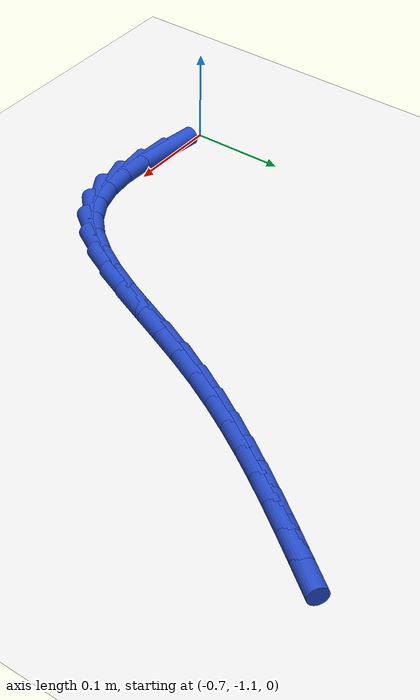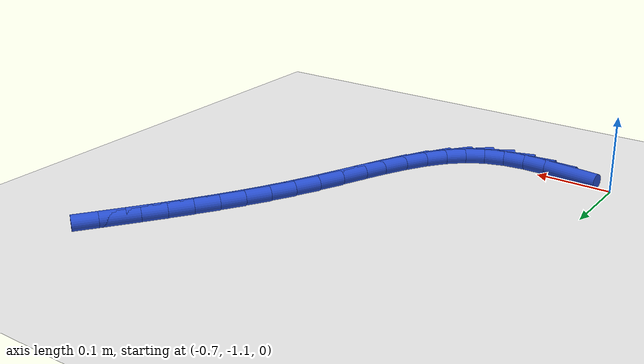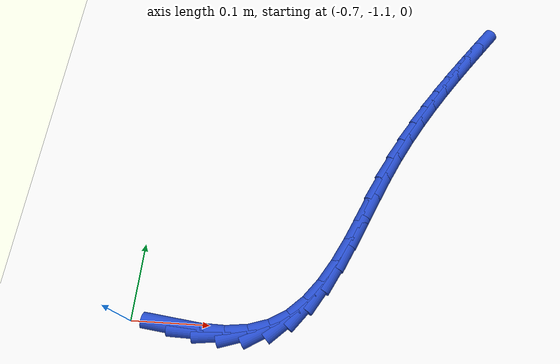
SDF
<sdf version="1.6">
 <world name="default">
  <model name="ground_plane">
   <static>1</static>
   <link name="link">
    <collision name="collision">
     <geometry><plane><normal>0 0 1</normal><size>100 100</size></plane></geometry>
     <surface><friction><ode><mu>100</mu><mu2>50</mu2></ode></friction></surface>
    </collision>
    <visual name="visual">
     <cast_shadows>0</cast_shadows>
     <geometry><plane><normal>0 0 1</normal><size>100 100</size></plane></geometry>
     <material>
      <script><uri>file://media/materials/scripts/gazebo.material</uri><name>Gazebo/WhiteGlow</name></script>
     </material>
    </visual>
   </link>
  </model>
  <model name="line">
   <link name="link_207">
    <pose>-0.6419646865504964 -1.1043243968053154 0.01 0 1.57 -0.1273228503780875</pose>
    <collision name="collision">
     <geometry><cylinder><radius>0.01</radius><length>0.08</length></cylinder></geometry>
    </collision>
    <visual name="visual">
     <material>
      <script><name>Gazebo/Blue</name><uri>file://media/materials/scripts/gazebo.material</uri></script>
     </material>
     <geometry><cylinder><radius>0.01</radius><length>0.08</length></cylinder></geometry>
    </visual>
   </link>
   <link name="link_208">
    <pose>-0.609027874496208 -1.108540814528411 0.01 0 1.57 -0.0294314310449744</pose>
    <collision name="collision">
     <geometry><cylinder><radius>0.01</radius><length>0.08</length></cylinder></geometry>
    </collision>
    <visual name="visual">
     <material>
      <script><name>Gazebo/Blue</name><uri>file://media/materials/scripts/gazebo.material</uri></script>
     </material>
     <geometry><cylinder><radius>0.01</radius><length>0.08</length></cylinder></geometry>
    </visual>
   </link>
   <link name="link_209">
    <pose>-0.5779092266197554 -1.1094569454031866 0.01 0 1.57 0.10914798589939939</pose>
    <collision name="collision">
     <geometry><cylinder><radius>0.01</radius><length>0.08</length></cylinder></geometry>
    </collision>
    <visual name="visual">
     <material>
      <script><name>Gazebo/Blue</name><uri>file://media/materials/scripts/gazebo.material</uri></script>
     </material>
     <geometry><cylinder><radius>0.01</radius><length>0.08</length></cylinder></geometry>
    </visual>
   </link>
   <link name="link_210">
    <pose>-0.5490020219410112 -1.1062891927880636 0.01 0 1.57 0.2964888888452524</pose>
    <collision name="collision">
     <geometry><cylinder><radius>0.01</radius><length>0.08</length></cylinder></geometry>
    </collision>
    <visual name="visual">
     <material>
      <script><name>Gazebo/Blue</name><uri>file://media/materials/scripts/gazebo.material</uri></script>
     </material>
     <geometry><cylinder><radius>0.01</radius><length>0.08</length></cylinder></geometry>
    </visual>
   </link>
   <link name="link_211">
    <pose>-0.522699539479851 -1.0982539600414651 0.01 0 1.57 0.5288798632764764</pose>
    <collision name="collision">
     <geometry><cylinder><radius>0.01</radius><length>0.08</length></cylinder></geometry>
    </collision>
    <visual name="visual">
     <material>
      <script><name>Gazebo/Blue</name><uri>file://media/materials/scripts/gazebo.material</uri></script>
     </material>
     <geometry><cylinder><radius>0.01</radius><length>0.08</length></cylinder></geometry>
    </visual>
   </link>
   <link name="link_212">
    <pose>-0.4993678918183211 -1.084618634356574 0.01 0 1.57 0.7502643885886007</pose>
    <collision name="collision">
     <geometry><cylinder><radius>0.01</radius><length>0.08</length></cylinder></geometry>
    </collision>
    <visual name="visual">
     <material>
      <script><name>Gazebo/Blue</name><uri>file://media/materials/scripts/gazebo.material</uri></script>
     </material>
     <geometry><cylinder><radius>0.01</radius><length>0.08</length></cylinder></geometry>
    </visual>
   </link>
   <link name="link_213">
    <pose>-0.47889926774925434 -1.0655400258354992 0.01 0 1.57 0.916295596899027</pose>
    <collision name="collision">
     <geometry><cylinder><radius>0.01</radius><length>0.08</length></cylinder></geometry>
    </collision>
    <visual name="visual">
     <material>
      <script><name>Gazebo/Blue</name><uri>file://media/materials/scripts/gazebo.material</uri></script>
     </material>
     <geometry><cylinder><radius>0.01</radius><length>0.08</length></cylinder></geometry>
    </visual>
   </link>
   <link name="link_214">
    <pose>-0.4607831373076315 -1.0419307354843772 0.01 0 1.57 1.0313241511752642</pose>
    <collision name="collision">
     <geometry><cylinder><radius>0.01</radius><length>0.08</length></cylinder></geometry>
    </collision>
    <visual name="visual">
     <material>
      <script><name>Gazebo/Blue</name><uri>file://media/materials/scripts/gazebo.material</uri></script>
     </material>
     <geometry><cylinder><radius>0.01</radius><length>0.08</length></cylinder></geometry>
    </visual>
   </link>
   <link name="link_215">
    <pose>-0.44449616353264026 -1.0147273994721941 0.01 0 1.57 1.105789159890827</pose>
    <collision name="collision">
     <geometry><cylinder><radius>0.01</radius><length>0.08</length></cylinder></geometry>
    </collision>
    <visual name="visual">
     <material>
      <script><name>Gazebo/Blue</name><uri>file://media/materials/scripts/gazebo.material</uri></script>
     </material>
     <geometry><cylinder><radius>0.01</radius><length>0.08</length></cylinder></geometry>
    </visual>
   </link>
   <link name="link_216">
    <pose>-0.42951500946346854 -0.9848666539679368 0.01 0 1.57 1.1482850878371735</pose>
    <collision name="collision">
     <geometry><cylinder><radius>0.01</radius><length>0.08</length></cylinder></geometry>
    </collision>
    <visual name="visual">
     <material>
      <script><name>Gazebo/Blue</name><uri>file://media/materials/scripts/gazebo.material</uri></script>
     </material>
     <geometry><cylinder><radius>0.01</radius><length>0.08</length></cylinder></geometry>
    </visual>
   </link>
   <link name="link_217">
    <pose>-0.41531633813930396 -0.9532851351405912 0.01 0 1.57 1.1641170988290683</pose>
    <collision name="collision">
     <geometry><cylinder><radius>0.01</radius><length>0.08</length></cylinder></geometry>
    </collision>
    <visual name="visual">
     <material>
      <script><name>Gazebo/Blue</name><uri>file://media/materials/scripts/gazebo.material</uri></script>
     </material>
     <geometry><cylinder><radius>0.01</radius><length>0.08</length></cylinder></geometry>
    </visual>
   </link>
   <link name="link_218">
    <pose>-0.4013768125993345 -0.9209194791591441 0.01 0 1.57 1.1555113587994952</pose>
    <collision name="collision">
     <geometry><cylinder><radius>0.01</radius><length>0.08</length></cylinder></geometry>
    </collision>
    <visual name="visual">
     <material>
      <script><name>Gazebo/Blue</name><uri>file://media/materials/scripts/gazebo.material</uri></script>
     </material>
     <geometry><cylinder><radius>0.01</radius><length>0.08</length></cylinder></geometry>
    </visual>
   </link>
   <link name="link_219">
    <pose>-0.38717309588274795 -0.8887063221925819 0.01 0 1.57 1.123592244398268</pose>
    <collision name="collision">
     <geometry><cylinder><radius>0.01</radius><length>0.08</length></cylinder></geometry>
    </collision>
    <visual name="visual">
     <material>
      <script><name>Gazebo/Blue</name><uri>file://media/materials/scripts/gazebo.material</uri></script>
     </material>
     <geometry><cylinder><radius>0.01</radius><length>0.08</length></cylinder></geometry>
    </visual>
   </link>
   <link name="link_220">
    <pose>-0.3722171746990968 -0.8575229064767532 0.01 0 1.57 1.084334476768937</pose>
    <collision name="collision">
     <geometry><cylinder><radius>0.01</radius><length>0.08</length></cylinder></geometry>
    </collision>
    <visual name="visual">
     <material>
      <script><name>Gazebo/Blue</name><uri>file://media/materials/scripts/gazebo.material</uri></script>
     </material>
     <geometry><cylinder><radius>0.01</radius><length>0.08</length></cylinder></geometry>
    </visual>
   </link>
   <link name="link_221">
    <pose>-0.3563985675117339 -0.8276116847278782 0.01 0 1.57 1.0485992326474876</pose>
    <collision name="collision">
     <geometry><cylinder><radius>0.01</radius><length>0.08</length></cylinder></geometry>
    </collision>
    <visual name="visual">
     <material>
      <script><name>Gazebo/Blue</name><uri>file://media/materials/scripts/gazebo.material</uri></script>
     </material>
     <geometry><cylinder><radius>0.01</radius><length>0.08</length></cylinder></geometry>
    </visual>
   </link>
   <link name="link_222">
    <pose>-0.339835510851496 -0.7988305384817982 0.01 0 1.57 1.0170758292904825</pose>
    <collision name="collision">
     <geometry><cylinder><radius>0.01</radius><length>0.08</length></cylinder></geometry>
    </collision>
    <visual name="visual">
     <material>
      <script><name>Gazebo/Blue</name><uri>file://media/materials/scripts/gazebo.material</uri></script>
     </material>
     <geometry><cylinder><radius>0.01</radius><length>0.08</length></cylinder></geometry>
    </visual>
   </link>
   <link name="link_223">
    <pose>-0.3226494383023356 -0.7710319736846436 0.01 0 1.57 0.9902247542997923</pose>
    <collision name="collision">
     <geometry><cylinder><radius>0.01</radius><length>0.08</length></cylinder></geometry>
    </collision>
    <visual name="visual">
     <material>
      <script><name>Gazebo/Blue</name><uri>file://media/materials/scripts/gazebo.material</uri></script>
     </material>
     <geometry><cylinder><radius>0.01</radius><length>0.08</length></cylinder></geometry>
    </visual>
   </link>
   <link name="link_224">
    <pose>-0.3049617834482053 -0.7440684962825442 0.01 0 1.57 0.9684280120355587</pose>
    <collision name="collision">
     <geometry><cylinder><radius>0.01</radius><length>0.08</length></cylinder></geometry>
    </collision>
    <visual name="visual">
     <material>
      <script><name>Gazebo/Blue</name><uri>file://media/materials/scripts/gazebo.material</uri></script>
     </material>
     <geometry><cylinder><radius>0.01</radius><length>0.08</length></cylinder></geometry>
    </visual>
   </link>
   <link name="link_225">
    <pose>-0.28689397987305776 -0.7177926122216302 0.01 0 1.57 0.9519939235292463</pose>
    <collision name="collision">
     <geometry><cylinder><radius>0.01</radius><length>0.08</length></cylinder></geometry>
    </collision>
    <visual name="visual">
     <material>
      <script><name>Gazebo/Blue</name><uri>file://media/materials/scripts/gazebo.material</uri></script>
     </material>
     <geometry><cylinder><radius>0.01</radius><length>0.08</length></cylinder></geometry>
    </visual>
   </link>
   <link name="link_226">
    <pose>-0.2685674611608456 -0.6920568274480317 0.01 0 1.57 0.9411644513216194</pose>
    <collision name="collision">
     <geometry><cylinder><radius>0.01</radius><length>0.08</length></cylinder></geometry>
    </collision>
    <visual name="visual">
     <material>
      <script><name>Gazebo/Blue</name><uri>file://media/materials/scripts/gazebo.material</uri></script>
     </material>
     <geometry><cylinder><radius>0.01</radius><length>0.08</length></cylinder></geometry>
    </visual>
   </link>
   <link name="link_227">
    <pose>-0.2501036608955213 -0.6667136479078788 0.01 0 1.57 0.9361225661401574</pose>
    <collision name="collision">
     <geometry><cylinder><radius>0.01</radius><length>0.08</length></cylinder></geometry>
    </collision>
    <visual name="visual">
     <material>
      <script><name>Gazebo/Blue</name><uri>file://media/materials/scripts/gazebo.material</uri></script>
     </material>
     <geometry><cylinder><radius>0.01</radius><length>0.08</length></cylinder></geometry>
    </visual>
   </link>
  </model>
 </world>
</sdf>
